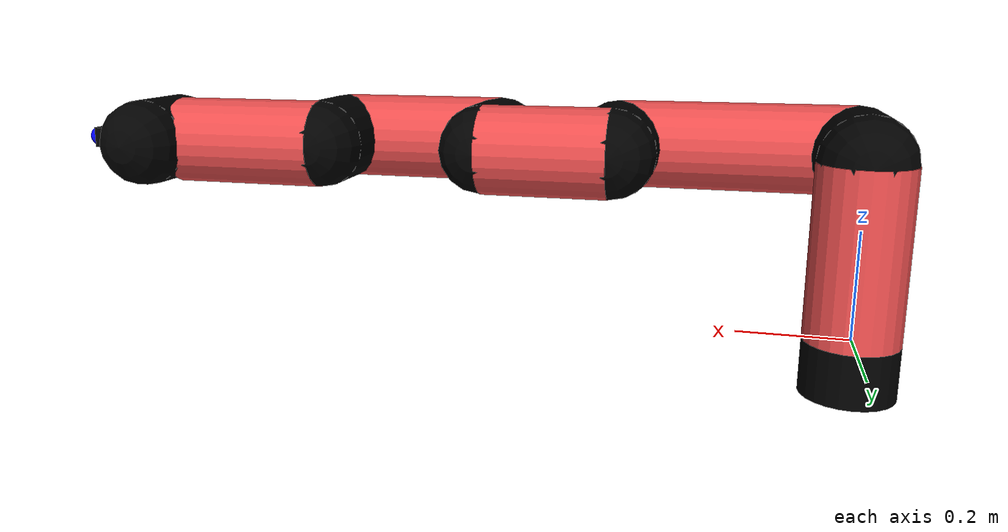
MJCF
<mujoco model="manipulator">
		<compiler angle="degree" coordinate="local" inertiafromgeom="auto" meshdir="meshes/"/>
		<option gravity="0 0 0" integrator="RK4" iterations="30" timestep="0.01"/>

		<default>
		<joint armature="1" limited="true" stiffness="10" damping="15" frictionloss="5.0"/>
		<geom conaffinity="1" condim="3" contype="1" friction=".5 .1 .1" margin="0.002"/>
		<motor ctrllimited="true"/>
		<position ctrllimited="true"/>
		</default>

		<asset>
		<texture builtin="gradient" height="100" rgb1="1.0 1.0 1.0" rgb2="1.0 1.0 1.0" type="skybox" width="100"/>
		<texture builtin="flat" height="32" name="arm_tex" rgb1="0.9 0.3 0.3" type="2d" width="32"/>
		<texture builtin="flat" height="32" name="gripper_tex" rgb1="0.0 0.0 0.0" type="cube" width="32"/>

		<material name="arm_mat" shininess="0.1" specular="0.1" texture="arm_tex"/>
		<material name="gripper_mat" shininess="1" specular="1" texture="gripper_tex"/>
		</asset>

		<worldbody>
		<light cutoff="45" diffuse=".8 .8 .8" dir="0 0.16 -1" directional="false" name="light" pos="0 -2.0 8.0" specular="0.3 0.3 0.3"/>

		<body name="base_link" pos="0 0 -0.1">
		<geom fromto="0 0 0 0 0 0.1" material="arm_mat" name="base_link" rgba="0.0 0.0 0.0 1" size="0.085" type="cylinder"/>
		</body>

		<body name="l1" pos="0 0 0">
<geom fromto="0 0 0 0 0 0.32" material="arm_mat" name="l1" rgba="0.9 0.3 0.3 1" size="0.085" type="cylinder"/>
<geom fromto="0 0 0.32 0 -0.16 0.32" material="arm_mat" name="l1_ex" rgba="0.0 0.0 0.0 1" size="0.085" type="capsule"/>
<joint axis="0 0 1" name="j1" pos="0 0 0" range="-90 90" damping="23.47" frictionloss="9.81"/>

<body name="l2" pos="0 -0.16 0.32">
<geom fromto="0 0 0 0.44 0 0" material="arm_mat" name="l2" rgba="0.9 0.3 0.3 1" size="0.085" type="cylinder"/>
<geom fromto="0.44 0 0 0.44 0.16 0" material="arm_mat" name="l2_ex" rgba="0.0 0.0 0.0 1" size="0.085" type="capsule"/>
<joint axis="0.0 1.0 0.0" name="j2" pos="0 0 0" range="-90 60" damping="36.92" frictionloss="10.96"/>

<body name="l3" pos="0.44 0.16 0">
<geom fromto="0 0 0 0.24 0 0" material="arm_mat" name="l3" rgba="0.9 0.3 0.3 1" size="0.085" type="cylinder"/>
<geom fromto="0.24 0 0 0.24 -0.16 0" material="arm_mat" name="l3_ex" rgba="0.0 0.0 0.0 1" size="0.085" type="capsule"/>
<joint axis="0.0 1.0 0.0" name="j3" pos="0 0 0" range="-30 60" damping="32.78" frictionloss="10.53"/>

<body name="l4" pos="0.24 -0.16 0">
<geom fromto="0 0 0 0.33 0 0" material="arm_mat" name="l4" rgba="0.9 0.3 0.3 1" size="0.085" type="cylinder"/>
<geom fromto="0.33 0 0 0.33 0.16 0" material="arm_mat" name="l4_ex" rgba="0.0 0.0 0.0 1" size="0.085" type="capsule"/>
<joint axis="0.0 1.0 0.0" name="j4" pos="0 0 0" range="-30 60" damping="36.42" frictionloss="9.74"/>

<body name="l5" pos="0.33 0.16 0">
<geom fromto="0 0 0 0.3 0 0" material="arm_mat" name="l5" rgba="0.9 0.3 0.3 1" size="0.085" type="cylinder"/>
<joint axis="0.0 1.0 0.0" name="j5" pos="0 0 0" range="-30 60" damping="31.34" frictionloss="10.9"/>

<body name="gripper" pos="0.3 0 0">
<geom fromto="0.05 -0.07 0 0.05 0.07 0" material="gripper_mat" name="gripper" rgba="0.0 0.0 0.0 1" size="0.085" type="capsule"/><joint axis="1 0 0" name="j6" pos="0 0 0" range="-90 90" damping="15" frictionloss="5.0"/><body name="finger" pos="0.1 0 0">
<geom fromto="0 0.0 0 0.1 0.0 0" material="gripper_mat" name="finger" rgba="0.0 0.0 0.0 1" size="0.020 0.06 0.06" type="box"/>
</body>
<site name="current" pos="0.2 0. 0.0" rgba="0. 0. 1.0 1" size="0.02" type="sphere"/>
</body>
</body>
</body>
</body>
</body>
</body>
</worldbody>
<actuator>
<motor ctrllimited="true" ctrlrange="-1.0 1.0" joint="j1" gear="60.48"/>
<motor ctrllimited="true" ctrlrange="-1.0 1.0" joint="j2" gear="82.63"/>
<motor ctrllimited="true" ctrlrange="-1.0 1.0" joint="j3" gear="85.5"/>
<motor ctrllimited="true" ctrlrange="-1.0 1.0" joint="j4" gear="84.44"/>
<motor ctrllimited="true" ctrlrange="-1.0 1.0" joint="j5" gear="67.52"/>
<motor ctrllimited="true" ctrlrange="-1.0 1.0" joint="j6" gear="80"/>
</actuator>
</mujoco>
